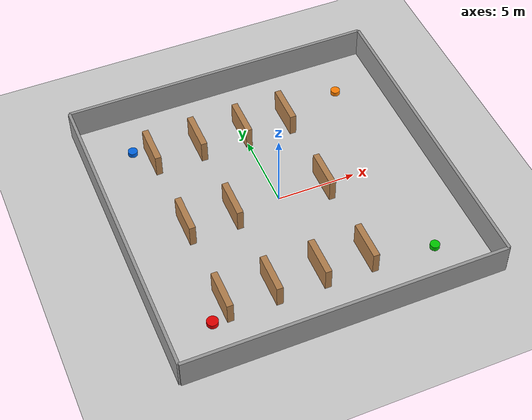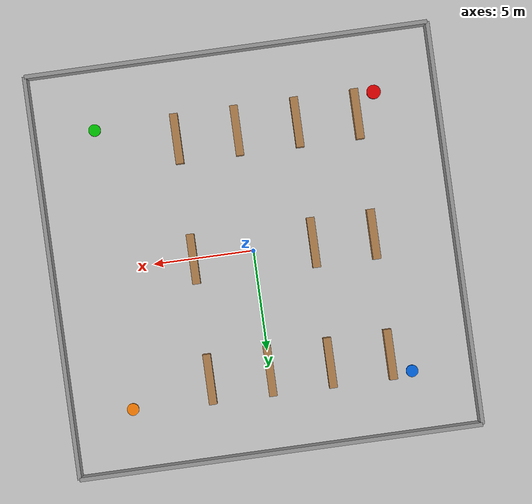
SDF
<?xml version="1.0" ?>
<sdf version="1.6">
  <world name="delivery_world">

    <!-- Physics -->
    <physics type="ode">
      <max_step_size>0.003</max_step_size>
      <real_time_factor>1.0</real_time_factor>
      <real_time_update_rate>333</real_time_update_rate>
    </physics>

    <!-- Plugins -->
    <plugin name="gazebo_ros_state" filename="libgazebo_ros_state.so"/>
    <plugin name="gazebo_ros_factory" filename="libgazebo_ros_factory.so"/>

    <!-- Lighting -->
    <light name="sun" type="directional">
      <cast_shadows>true</cast_shadows>
      <pose>0 0 10 0 0 0</pose>
      <diffuse>0.9 0.9 0.9 1</diffuse>
      <specular>0.3 0.3 0.3 1</specular>
      <direction>-0.5 0.3 -0.9</direction>
    </light>

    <light name="ambient_light" type="point">
      <pose>0 0 5 0 0 0</pose>
      <diffuse>0.5 0.5 0.5 1</diffuse>
      <specular>0.1 0.1 0.1 1</specular>
      <attenuation>
        <range>20</range>
        <constant>0.2</constant>
        <linear>0.01</linear>
        <quadratic>0.001</quadratic>
      </attenuation>
    </light>

    <!-- Ground Plane -->
    <model name="ground_plane">
      <static>true</static>
      <link name="link">
        <collision name="collision">
          <geometry>
            <plane>
              <normal>0 0 1</normal>
              <size>50 50</size>
            </plane>
          </geometry>
          <surface>
            <friction><ode><mu>1</mu><mu2>1</mu2></ode></friction>
          </surface>
        </collision>
        <visual name="visual">
          <geometry>
            <plane>
              <normal>0 0 1</normal>
              <size>50 50</size>
            </plane>
          </geometry>
          <material>
            <script>
              <uri>file://media/materials/scripts/gazebo.material</uri>
              <name>Gazebo/Grey</name>
            </script>
          </material>
        </visual>
      </link>
    </model>

    <!-- ==================== OUTER WALLS ==================== -->
    <!-- North wall -->
    <model name="wall_north">
      <static>true</static>
      <pose>0 10 1 0 0 0</pose>
      <link name="link">
        <collision name="collision">
          <geometry><box><size>20 0.2 2</size></box></geometry>
        </collision>
        <visual name="visual">
          <geometry><box><size>20 0.2 2</size></box></geometry>
          <material><script><uri>file://media/materials/scripts/gazebo.material</uri><name>Gazebo/Grey</name></script></material>
        </visual>
      </link>
    </model>

    <!-- South wall -->
    <model name="wall_south">
      <static>true</static>
      <pose>0 -10 1 0 0 0</pose>
      <link name="link">
        <collision name="collision">
          <geometry><box><size>20 0.2 2</size></box></geometry>
        </collision>
        <visual name="visual">
          <geometry><box><size>20 0.2 2</size></box></geometry>
          <material><script><uri>file://media/materials/scripts/gazebo.material</uri><name>Gazebo/Grey</name></script></material>
        </visual>
      </link>
    </model>

    <!-- East wall -->
    <model name="wall_east">
      <static>true</static>
      <pose>10 0 1 0 0 0</pose>
      <link name="link">
        <collision name="collision">
          <geometry><box><size>0.2 20 2</size></box></geometry>
        </collision>
        <visual name="visual">
          <geometry><box><size>0.2 20 2</size></box></geometry>
          <material><script><uri>file://media/materials/scripts/gazebo.material</uri><name>Gazebo/Grey</name></script></material>
        </visual>
      </link>
    </model>

    <!-- West wall -->
    <model name="wall_west">
      <static>true</static>
      <pose>-10 0 1 0 0 0</pose>
      <link name="link">
        <collision name="collision">
          <geometry><box><size>0.2 20 2</size></box></geometry>
        </collision>
        <visual name="visual">
          <geometry><box><size>0.2 20 2</size></box></geometry>
          <material><script><uri>file://media/materials/scripts/gazebo.material</uri><name>Gazebo/Grey</name></script></material>
        </visual>
      </link>
    </model>

    <!-- ==================== SHELVING UNITS (obstacles) ==================== -->
    <!-- Row 1 shelves -->
    <model name="shelf_1_1">
      <static>true</static>
      <pose>-6 6 0.75 0 0 0</pose>
      <link name="link">
        <collision name="collision">
          <geometry><box><size>0.4 2.5 1.5</size></box></geometry>
        </collision>
        <visual name="visual">
          <geometry><box><size>0.4 2.5 1.5</size></box></geometry>
          <material><script><uri>file://media/materials/scripts/gazebo.material</uri><name>Gazebo/Wood</name></script></material>
        </visual>
      </link>
    </model>

    <model name="shelf_1_2">
      <static>true</static>
      <pose>-3 6 0.75 0 0 0</pose>
      <link name="link">
        <collision name="collision">
          <geometry><box><size>0.4 2.5 1.5</size></box></geometry>
        </collision>
        <visual name="visual">
          <geometry><box><size>0.4 2.5 1.5</size></box></geometry>
          <material><script><uri>file://media/materials/scripts/gazebo.material</uri><name>Gazebo/Wood</name></script></material>
        </visual>
      </link>
    </model>

    <model name="shelf_1_3">
      <static>true</static>
      <pose>0 6 0.75 0 0 0</pose>
      <link name="link">
        <collision name="collision">
          <geometry><box><size>0.4 2.5 1.5</size></box></geometry>
        </collision>
        <visual name="visual">
          <geometry><box><size>0.4 2.5 1.5</size></box></geometry>
          <material><script><uri>file://media/materials/scripts/gazebo.material</uri><name>Gazebo/Wood</name></script></material>
        </visual>
      </link>
    </model>

    <model name="shelf_1_4">
      <static>true</static>
      <pose>3 6 0.75 0 0 0</pose>
      <link name="link">
        <collision name="collision">
          <geometry><box><size>0.4 2.5 1.5</size></box></geometry>
        </collision>
        <visual name="visual">
          <geometry><box><size>0.4 2.5 1.5</size></box></geometry>
          <material><script><uri>file://media/materials/scripts/gazebo.material</uri><name>Gazebo/Wood</name></script></material>
        </visual>
      </link>
    </model>

    <!-- Row 2 shelves -->
    <model name="shelf_2_1">
      <static>true</static>
      <pose>-6 0 0.75 0 0 0</pose>
      <link name="link">
        <collision name="collision">
          <geometry><box><size>0.4 2.5 1.5</size></box></geometry>
        </collision>
        <visual name="visual">
          <geometry><box><size>0.4 2.5 1.5</size></box></geometry>
          <material><script><uri>file://media/materials/scripts/gazebo.material</uri><name>Gazebo/Wood</name></script></material>
        </visual>
      </link>
    </model>

    <model name="shelf_2_2">
      <static>true</static>
      <pose>-3 0 0.75 0 0 0</pose>
      <link name="link">
        <collision name="collision">
          <geometry><box><size>0.4 2.5 1.5</size></box></geometry>
        </collision>
        <visual name="visual">
          <geometry><box><size>0.4 2.5 1.5</size></box></geometry>
          <material><script><uri>file://media/materials/scripts/gazebo.material</uri><name>Gazebo/Wood</name></script></material>
        </visual>
      </link>
    </model>

    <model name="shelf_2_3">
      <static>true</static>
      <pose>3 0 0.75 0 0 0</pose>
      <link name="link">
        <collision name="collision">
          <geometry><box><size>0.4 2.5 1.5</size></box></geometry>
        </collision>
        <visual name="visual">
          <geometry><box><size>0.4 2.5 1.5</size></box></geometry>
          <material><script><uri>file://media/materials/scripts/gazebo.material</uri><name>Gazebo/Wood</name></script></material>
        </visual>
      </link>
    </model>

    <!-- Row 3 shelves -->
    <model name="shelf_3_1">
      <static>true</static>
      <pose>-6 -6 0.75 0 0 0</pose>
      <link name="link">
        <collision name="collision">
          <geometry><box><size>0.4 2.5 1.5</size></box></geometry>
        </collision>
        <visual name="visual">
          <geometry><box><size>0.4 2.5 1.5</size></box></geometry>
          <material><script><uri>file://media/materials/scripts/gazebo.material</uri><name>Gazebo/Wood</name></script></material>
        </visual>
      </link>
    </model>

    <model name="shelf_3_2">
      <static>true</static>
      <pose>-3 -6 0.75 0 0 0</pose>
      <link name="link">
        <collision name="collision">
          <geometry><box><size>0.4 2.5 1.5</size></box></geometry>
        </collision>
        <visual name="visual">
          <geometry><box><size>0.4 2.5 1.5</size></box></geometry>
          <material><script><uri>file://media/materials/scripts/gazebo.material</uri><name>Gazebo/Wood</name></script></material>
        </visual>
      </link>
    </model>

    <model name="shelf_3_3">
      <static>true</static>
      <pose>0 -6 0.75 0 0 0</pose>
      <link name="link">
        <collision name="collision">
          <geometry><box><size>0.4 2.5 1.5</size></box></geometry>
        </collision>
        <visual name="visual">
          <geometry><box><size>0.4 2.5 1.5</size></box></geometry>
          <material><script><uri>file://media/materials/scripts/gazebo.material</uri><name>Gazebo/Wood</name></script></material>
        </visual>
      </link>
    </model>

    <model name="shelf_3_4">
      <static>true</static>
      <pose>3 -6 0.75 0 0 0</pose>
      <link name="link">
        <collision name="collision">
          <geometry><box><size>0.4 2.5 1.5</size></box></geometry>
        </collision>
        <visual name="visual">
          <geometry><box><size>0.4 2.5 1.5</size></box></geometry>
          <material><script><uri>file://media/materials/scripts/gazebo.material</uri><name>Gazebo/Wood</name></script></material>
        </visual>
      </link>
    </model>

    <!-- ==================== DELIVERY STATION MARKERS ==================== -->
    <!-- Station A (orange cylinder) -->
    <model name="delivery_station_A">
      <static>true</static>
      <pose>7 7 0.15 0 0 0</pose>
      <link name="link">
        <collision name="collision">
          <geometry><cylinder><radius>0.3</radius><length>0.3</length></cylinder></geometry>
        </collision>
        <visual name="visual">
          <geometry><cylinder><radius>0.3</radius><length>0.3</length></cylinder></geometry>
          <material>
            <ambient>1.0 0.5 0.0 1</ambient>
            <diffuse>1.0 0.5 0.0 1</diffuse>
          </material>
        </visual>
      </link>
    </model>

    <!-- Station B (green cylinder) -->
    <model name="delivery_station_B">
      <static>true</static>
      <pose>7 -7 0.15 0 0 0</pose>
      <link name="link">
        <collision name="collision">
          <geometry><cylinder><radius>0.3</radius><length>0.3</length></cylinder></geometry>
        </collision>
        <visual name="visual">
          <geometry><cylinder><radius>0.3</radius><length>0.3</length></cylinder></geometry>
          <material>
            <ambient>0.0 0.8 0.0 1</ambient>
            <diffuse>0.0 0.8 0.0 1</diffuse>
          </material>
        </visual>
      </link>
    </model>

    <!-- Station C (blue cylinder) -->
    <model name="delivery_station_C">
      <static>true</static>
      <pose>-7 7 0.15 0 0 0</pose>
      <link name="link">
        <collision name="collision">
          <geometry><cylinder><radius>0.3</radius><length>0.3</length></cylinder></geometry>
        </collision>
        <visual name="visual">
          <geometry><cylinder><radius>0.3</radius><length>0.3</length></cylinder></geometry>
          <material>
            <ambient>0.0 0.4 0.9 1</ambient>
            <diffuse>0.0 0.4 0.9 1</diffuse>
          </material>
        </visual>
      </link>
    </model>

    <!-- Home/Charging Station (red cylinder) -->
    <model name="home_station">
      <static>true</static>
      <pose>-7 -7 0.15 0 0 0</pose>
      <link name="link">
        <collision name="collision">
          <geometry><cylinder><radius>0.35</radius><length>0.3</length></cylinder></geometry>
        </collision>
        <visual name="visual">
          <geometry><cylinder><radius>0.35</radius><length>0.3</length></cylinder></geometry>
          <material>
            <ambient>0.9 0.0 0.0 1</ambient>
            <diffuse>0.9 0.0 0.0 1</diffuse>
          </material>
        </visual>
      </link>
    </model>

  </world>
</sdf>
